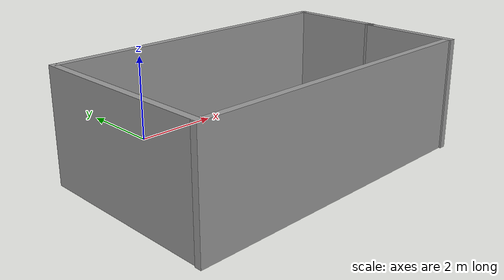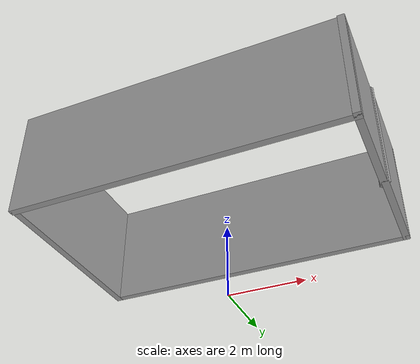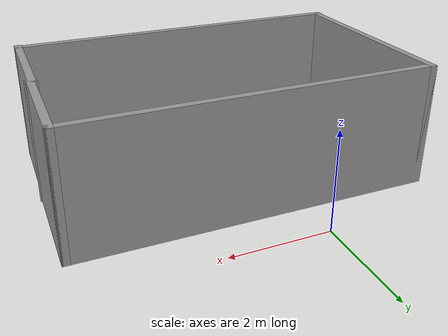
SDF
<?xml version='1.0'?>
<sdf version='1.6'>
  <model name='Untitled'>
    <pose frame=''>0.981396 -3.01 0 0 -0 0</pose>
    <link name='Wall_0'>
      <collision name='Wall_0_Collision'>
        <geometry>
          <box>
            <size>7.25 0.15 2.5</size>
          </box>
        </geometry>
        <pose frame=''>0 0 1.25 0 -0 0</pose>
      </collision>
      <visual name='Wall_0_Visual'>
        <pose frame=''>0 0 1.25 0 -0 0</pose>
        <geometry>
          <box>
            <size>7.25 0.15 2.5</size>
          </box>
        </geometry>
        <material>
          <script>
            <uri>file://media/materials/scripts/gazebo.material</uri>
            <name>Gazebo/Grey</name>
          </script>
          <ambient>1 1 1 1</ambient>
        </material>
        <meta>
          <layer>0</layer>
        </meta>
      </visual>
      <pose frame=''>-0.001396 2.1 0 0 -0 0</pose>
    </link>
    <link name='Wall_1'>
      <collision name='Wall_1_Collision'>
        <geometry>
          <box>
            <size>2.25 0.15 2.5</size>
          </box>
        </geometry>
        <pose frame=''>0 0 1.25 0 -0 0</pose>
      </collision>
      <visual name='Wall_1_Visual'>
        <pose frame=''>0 0 1.25 0 -0 0</pose>
        <geometry>
          <box>
            <size>2.25 0.15 2.5</size>
          </box>
        </geometry>
        <material>
          <script>
            <uri>file://media/materials/scripts/gazebo.material</uri>
            <name>Gazebo/Grey</name>
          </script>
          <ambient>1 1 1 1</ambient>
        </material>
        <meta>
          <layer>0</layer>
        </meta>
      </visual>
      <pose frame=''>3.5486 1.05 0 0 0 -1.5708</pose>
    </link>
    <link name='Wall_2'>
      <collision name='Wall_2_Collision'>
        <geometry>
          <box>
            <size>0.197538 0.15 2.5</size>
          </box>
        </geometry>
        <pose frame=''>0 0 1.25 0 -0 0</pose>
      </collision>
      <visual name='Wall_2_Visual'>
        <pose frame=''>0 0 1.25 0 -0 0</pose>
        <geometry>
          <box>
            <size>0.197538 0.15 2.5</size>
          </box>
        </geometry>
        <material>
          <script>
            <uri>file://media/materials/scripts/gazebo.material</uri>
            <name>Gazebo/Grey</name>
          </script>
          <ambient>1 1 1 1</ambient>
        </material>
        <meta>
          <layer>0</layer>
        </meta>
      </visual>
      <pose frame=''>3.53559 0.019887 0 0 -0 2.1504</pose>
    </link>
    <link name='Wall_3'>
      <collision name='Wall_3_Collision'>
        <geometry>
          <box>
            <size>2.25 0.15 2.5</size>
          </box>
        </geometry>
        <pose frame=''>0 0 1.25 0 -0 0</pose>
      </collision>
      <visual name='Wall_3_Visual'>
        <pose frame=''>0 0 1.25 0 -0 0</pose>
        <geometry>
          <box>
            <size>2.25 0.15 2.5</size>
          </box>
        </geometry>
        <material>
          <script>
            <uri>file://media/materials/scripts/gazebo.material</uri>
            <name>Gazebo/Grey</name>
          </script>
          <ambient>1 1 1 1</ambient>
        </material>
        <meta>
          <layer>0</layer>
        </meta>
      </visual>
      <pose frame=''>3.52257 -1.05 0 0 0 -1.5708</pose>
    </link>
    <link name='Wall_4'>
      <collision name='Wall_4_Collision'>
        <geometry>
          <box>
            <size>7.25 0.15 2.5</size>
          </box>
        </geometry>
        <pose frame=''>0 0 1.25 0 -0 0</pose>
      </collision>
      <visual name='Wall_4_Visual'>
        <pose frame=''>0 0 1.25 0 -0 0</pose>
        <geometry>
          <box>
            <size>7.25 0.15 2.5</size>
          </box>
        </geometry>
        <material>
          <script>
            <uri>file://media/materials/scripts/gazebo.material</uri>
            <name>Gazebo/Grey</name>
          </script>
          <ambient>1 1 1 1</ambient>
        </material>
        <meta>
          <layer>0</layer>
        </meta>
      </visual>
      <pose frame=''>-0.027432 -2.06023 0 0 -0 3.14159</pose>
    </link>
    <link name='Wall_7'>
      <collision name='Wall_7_Collision'>
        <geometry>
          <box>
            <size>4.25 0.15 2.5</size>
          </box>
        </geometry>
        <pose frame=''>0 0 1.25 0 -0 0</pose>
      </collision>
      <visual name='Wall_7_Visual'>
        <pose frame=''>0 0 1.25 0 -0 0</pose>
        <geometry>
          <box>
            <size>4.25 0.15 2.5</size>
          </box>
        </geometry>
        <material>
          <script>
            <uri>file://media/materials/scripts/gazebo.material</uri>
            <name>Gazebo/Grey</name>
          </script>
          <ambient>1 1 1 1</ambient>
        </material>
        <meta>
          <layer>0</layer>
        </meta>
      </visual>
      <pose frame=''>-3.5514 0.05 0 0 -0 1.5708</pose>
    </link>
    <static>1</static>
  </model>
</sdf>
